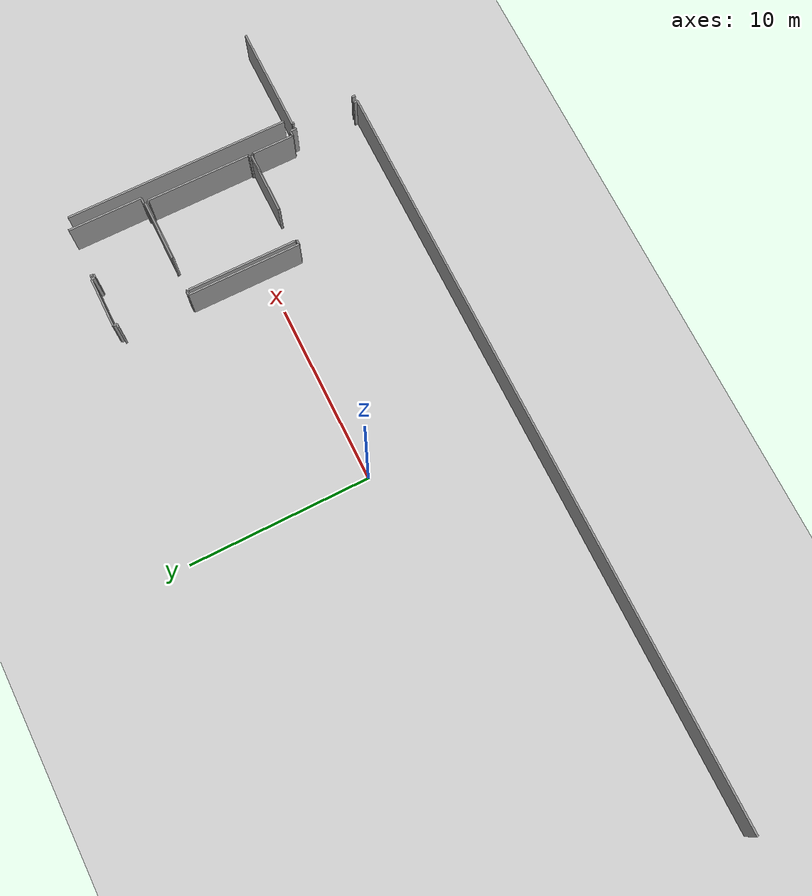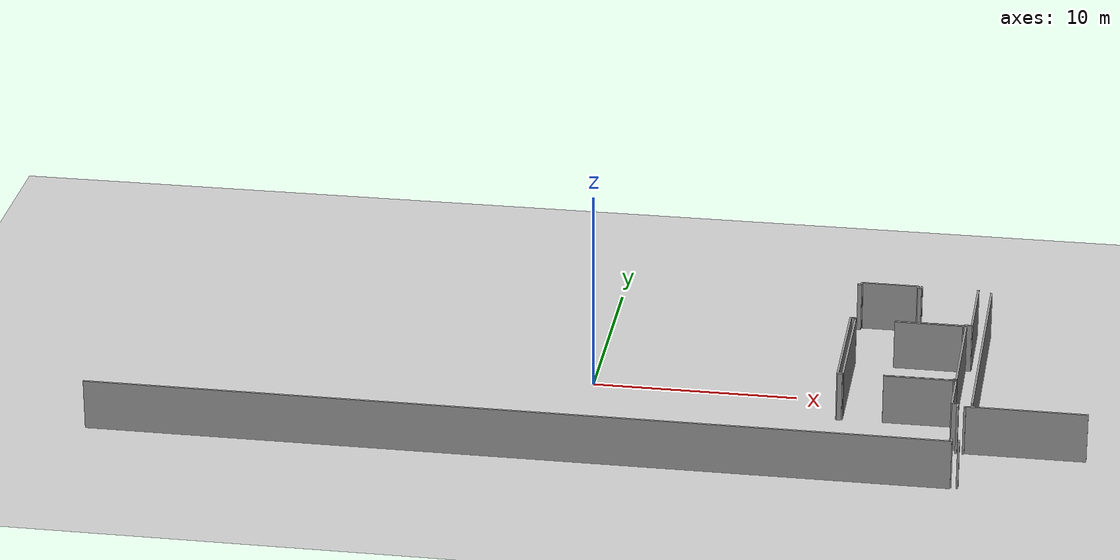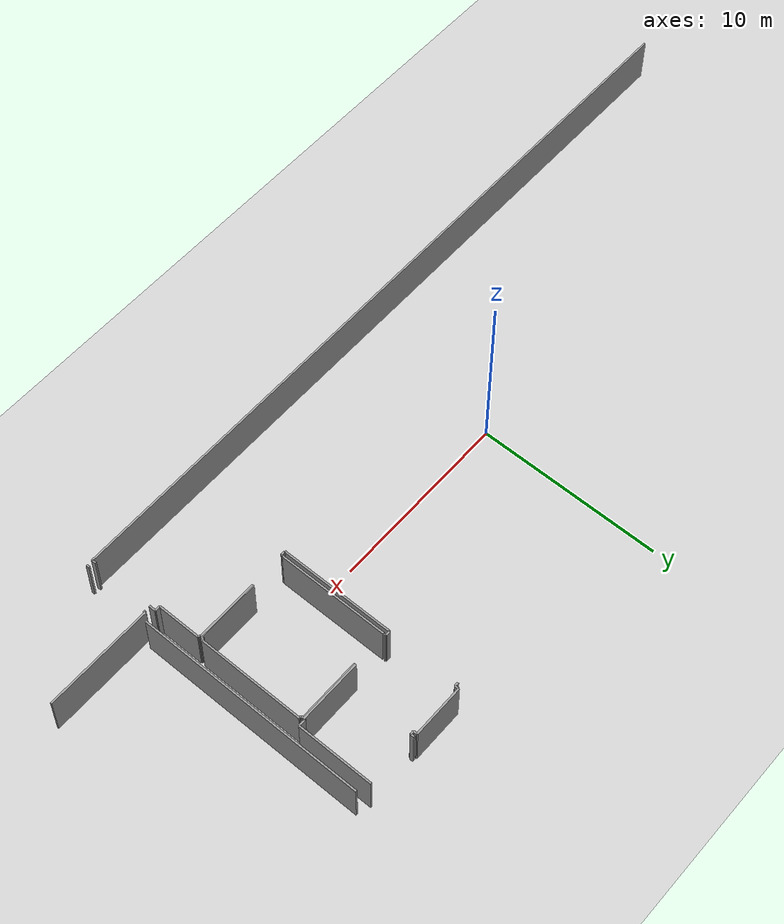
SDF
<sdf version="1.6">
 <world name="default">
  <model name="ground_plane">
   <static>1</static>
   <link name="link">
    <collision name="collision">
     <geometry><plane><normal>0 0 1</normal><size>100 100</size></plane></geometry>
     <surface><friction><ode><mu>100</mu><mu2>50</mu2></ode></friction></surface>
    </collision>
    <visual name="visual">
     <cast_shadows>0</cast_shadows>
     <geometry><plane><normal>0 0 1</normal><size>100 100</size></plane></geometry>
     <material>
      <script><uri>file://media/materials/scripts/gazebo.material</uri><name>Gazebo/Grey</name></script>
     </material>
    </visual>
   </link>
  </model>
  <model name="50041186">
   <static>1</static>
   <link name="Wall_82">
    <collision name="Wall_82_Collision">
     <geometry><box><size>41.6785657623 0.1 2.5</size></box></geometry>
     <pose>20.8392828812 0 1.25 0 0 0</pose>
    </collision>
    <visual name="Wall_82_Visual">
     <pose>20.8392828812 0 1.25 0 0 0</pose>
     <geometry><box><size>41.6785657623 0.1 2.5</size></box></geometry>
     <material>
      <script><uri>file://media/materials/scripts/gazebo.material</uri><name>Gazebo/Grey</name></script>
      <ambient>1 1 1 1</ambient>
     </material>
    </visual>
    <pose>78.0665714739 -16.5882912899 0 0 0 3.14159265359</pose>
   </link>
   <link name="Wall_107">
    <collision name="Wall_107_Collision">
     <geometry><box><size>0.202062509916 0.1 2.5</size></box></geometry>
     <pose>0.101031254958 0 1.25 0 0 0</pose>
    </collision>
    <visual name="Wall_107_Visual">
     <pose>0.101031254958 0 1.25 0 0 0</pose>
     <geometry><box><size>0.202062509916 0.1 2.5</size></box></geometry>
     <material>
      <script><uri>file://media/materials/scripts/gazebo.material</uri><name>Gazebo/Grey</name></script>
      <ambient>1 1 1 1</ambient>
     </material>
    </visual>
    <pose>72.0228462637 -0.211962557512 0 0 0 0.0</pose>
   </link>
   <link name="Wall_108">
    <collision name="Wall_108_Collision">
     <geometry><box><size>0.205616373156 0.1 2.5</size></box></geometry>
     <pose>0.102808186578 0 1.25 0 0 0</pose>
    </collision>
    <visual name="Wall_108_Visual">
     <pose>0.102808186578 0 1.25 0 0 0</pose>
     <geometry><box><size>0.205616373156 0.1 2.5</size></box></geometry>
     <material>
      <script><uri>file://media/materials/scripts/gazebo.material</uri><name>Gazebo/Grey</name></script>
      <ambient>1 1 1 1</ambient>
     </material>
    </visual>
    <pose>72.2249087736 -0.211962557512 0 0 0 1.57079632679</pose>
   </link>
   <link name="Wall_109">
    <collision name="Wall_109_Collision">
     <geometry><box><size>2.80831350151 0.1 2.5</size></box></geometry>
     <pose>1.40415675075 0 1.25 0 0 0</pose>
    </collision>
    <visual name="Wall_109_Visual">
     <pose>1.40415675075 0 1.25 0 0 0</pose>
     <geometry><box><size>2.80831350151 0.1 2.5</size></box></geometry>
     <material>
      <script><uri>file://media/materials/scripts/gazebo.material</uri><name>Gazebo/Grey</name></script>
      <ambient>1 1 1 1</ambient>
     </material>
    </visual>
    <pose>72.2249087736 -0.00634618435666 0 0 0 0.0</pose>
   </link>
   <link name="Wall_110">
    <collision name="Wall_110_Collision">
     <geometry><box><size>0.205362525781 0.1 2.5</size></box></geometry>
     <pose>0.102681262891 0 1.25 0 0 0</pose>
    </collision>
    <visual name="Wall_110_Visual">
     <pose>0.102681262891 0 1.25 0 0 0</pose>
     <geometry><box><size>0.205362525781 0.1 2.5</size></box></geometry>
     <material>
      <script><uri>file://media/materials/scripts/gazebo.material</uri><name>Gazebo/Grey</name></script>
      <ambient>1 1 1 1</ambient>
     </material>
    </visual>
    <pose>75.0332222751 -0.00634618435666 0 0 0 -1.57079632679</pose>
   </link>
   <link name="Wall_111">
    <collision name="Wall_111_Collision">
     <geometry><box><size>0.182516262097 0.1 2.5</size></box></geometry>
     <pose>0.0912581310487 0 1.25 0 0 0</pose>
    </collision>
    <visual name="Wall_111_Visual">
     <pose>0.0912581310487 0 1.25 0 0 0</pose>
     <geometry><box><size>0.182516262097 0.1 2.5</size></box></geometry>
     <material>
      <script><uri>file://media/materials/scripts/gazebo.material</uri><name>Gazebo/Grey</name></script>
      <ambient>1 1 1 1</ambient>
     </material>
    </visual>
    <pose>75.0332222751 -0.211708710138 0 0 0 0.0</pose>
   </link>
   <link name="Wall_112">
    <collision name="Wall_112_Collision">
     <geometry><box><size>0.203331746787 0.1 2.5</size></box></geometry>
     <pose>0.101665873394 0 1.25 0 0 0</pose>
    </collision>
    <visual name="Wall_112_Visual">
     <pose>0.101665873394 0 1.25 0 0 0</pose>
     <geometry><box><size>0.203331746787 0.1 2.5</size></box></geometry>
     <material>
      <script><uri>file://media/materials/scripts/gazebo.material</uri><name>Gazebo/Grey</name></script>
      <ambient>1 1 1 1</ambient>
     </material>
    </visual>
    <pose>75.2157385372 -0.211708710138 0 0 0 1.57079632679</pose>
   </link>
   <link name="Wall_113">
    <collision name="Wall_113_Collision">
     <geometry><box><size>4.07996192289 0.1 2.5</size></box></geometry>
     <pose>2.03998096145 0 1.25 0 0 0</pose>
    </collision>
    <visual name="Wall_113_Visual">
     <pose>2.03998096145 0 1.25 0 0 0</pose>
     <geometry><box><size>4.07996192289 0.1 2.5</size></box></geometry>
     <material>
      <script><uri>file://media/materials/scripts/gazebo.material</uri><name>Gazebo/Grey</name></script>
      <ambient>1 1 1 1</ambient>
     </material>
    </visual>
    <pose>78.0338251626 -0.00837696335078 0 0 0 -1.57079632679</pose>
   </link>
   <link name="Wall_114">
    <collision name="Wall_114_Collision">
     <geometry><box><size>0.366047913692 0.1 2.5</size></box></geometry>
     <pose>0.183023956846 0 1.25 0 0 0</pose>
    </collision>
    <visual name="Wall_114_Visual">
     <pose>0.183023956846 0 1.25 0 0 0</pose>
     <geometry><box><size>0.366047913692 0.1 2.5</size></box></geometry>
     <material>
      <script><uri>file://media/materials/scripts/gazebo.material</uri><name>Gazebo/Grey</name></script>
      <ambient>1 1 1 1</ambient>
     </material>
    </visual>
    <pose>78.0338251626 -4.08833888624 0 0 0 3.14159265359</pose>
   </link>
   <link name="Wall_115">
    <collision name="Wall_115_Collision">
     <geometry><box><size>0.0756465175313 0.1 2.5</size></box></geometry>
     <pose>0.0378232587657 0 1.25 0 0 0</pose>
    </collision>
    <visual name="Wall_115_Visual">
     <pose>0.0378232587657 0 1.25 0 0 0</pose>
     <geometry><box><size>0.0756465175313 0.1 2.5</size></box></geometry>
     <material>
      <script><uri>file://media/materials/scripts/gazebo.material</uri><name>Gazebo/Grey</name></script>
      <ambient>1 1 1 1</ambient>
     </material>
    </visual>
    <pose>77.6677772489 -4.08833888624 0 0 0 -1.57079632679</pose>
   </link>
   <link name="Wall_116">
    <collision name="Wall_116_Collision">
     <geometry><box><size>3.42021259718 0.1 2.5</size></box></geometry>
     <pose>1.71010629859 0 1.25 0 0 0</pose>
    </collision>
    <visual name="Wall_116_Visual">
     <pose>1.71010629859 0 1.25 0 0 0</pose>
     <geometry><box><size>3.42021259718 0.1 2.5</size></box></geometry>
     <material>
      <script><uri>file://media/materials/scripts/gazebo.material</uri><name>Gazebo/Grey</name></script>
      <ambient>1 1 1 1</ambient>
     </material>
    </visual>
    <pose>77.6677772489 -4.16398540378 0 0 0 3.14159265359</pose>
   </link>
   <link name="Wall_117">
    <collision name="Wall_117_Collision">
     <geometry><box><size>0.0756465175313 0.1 2.5</size></box></geometry>
     <pose>0.0378232587657 0 1.25 0 0 0</pose>
    </collision>
    <visual name="Wall_117_Visual">
     <pose>0.0378232587657 0 1.25 0 0 0</pose>
     <geometry><box><size>0.0756465175313 0.1 2.5</size></box></geometry>
     <material>
      <script><uri>file://media/materials/scripts/gazebo.material</uri><name>Gazebo/Grey</name></script>
      <ambient>1 1 1 1</ambient>
     </material>
    </visual>
    <pose>72.3042360781 -4.16398540378 0 0 0 1.57079632679</pose>
   </link>
   <link name="Wall_118">
    <collision name="Wall_118_Collision">
     <geometry><box><size>0.246866571474 0.1 2.5</size></box></geometry>
     <pose>0.123433285737 0 1.25 0 0 0</pose>
    </collision>
    <visual name="Wall_118_Visual">
     <pose>0.123433285737 0 1.25 0 0 0</pose>
     <geometry><box><size>0.246866571474 0.1 2.5</size></box></geometry>
     <material>
      <script><uri>file://media/materials/scripts/gazebo.material</uri><name>Gazebo/Grey</name></script>
      <ambient>1 1 1 1</ambient>
     </material>
    </visual>
    <pose>72.3042360781 -4.08833888624 0 0 0 3.14159265359</pose>
   </link>
   <link name="Wall_119">
    <collision name="Wall_119_Collision">
     <geometry><box><size>6.22598762494 0.1 2.5</size></box></geometry>
     <pose>3.11299381247 0 1.25 0 0 0</pose>
    </collision>
    <visual name="Wall_119_Visual">
     <pose>3.11299381247 0 1.25 0 0 0</pose>
     <geometry><box><size>6.22598762494 0.1 2.5</size></box></geometry>
     <material>
      <script><uri>file://media/materials/scripts/gazebo.material</uri><name>Gazebo/Grey</name></script>
      <ambient>1 1 1 1</ambient>
     </material>
    </visual>
    <pose>72.0573695066 -4.08833888624 0 0 0 -1.57079632679</pose>
   </link>
   <link name="Wall_120">
    <collision name="Wall_120_Collision">
     <geometry><box><size>0.228843407901 0.1 2.5</size></box></geometry>
     <pose>0.11442170395 0 1.25 0 0 0</pose>
    </collision>
    <visual name="Wall_120_Visual">
     <pose>0.11442170395 0 1.25 0 0 0</pose>
     <geometry><box><size>0.228843407901 0.1 2.5</size></box></geometry>
     <material>
      <script><uri>file://media/materials/scripts/gazebo.material</uri><name>Gazebo/Grey</name></script>
      <ambient>1 1 1 1</ambient>
     </material>
    </visual>
    <pose>72.0573695066 -10.3143265112 0 0 0 0.0</pose>
   </link>
   <link name="Wall_121">
    <collision name="Wall_121_Collision">
     <geometry><box><size>0.0694272568618 0.1 2.5</size></box></geometry>
     <pose>0.0347136284309 0 1.25 0 0 0</pose>
    </collision>
    <visual name="Wall_121_Visual">
     <pose>0.0347136284309 0 1.25 0 0 0</pose>
     <geometry><box><size>0.0694272568618 0.1 2.5</size></box></geometry>
     <material>
      <script><uri>file://media/materials/scripts/gazebo.material</uri><name>Gazebo/Grey</name></script>
      <ambient>1 1 1 1</ambient>
     </material>
    </visual>
    <pose>72.2862129145 -10.3143265112 0 0 0 1.57079632679</pose>
   </link>
   <link name="Wall_122">
    <collision name="Wall_122_Collision">
     <geometry><box><size>3.38898937014 0.1 2.5</size></box></geometry>
     <pose>1.69449468507 0 1.25 0 0 0</pose>
    </collision>
    <visual name="Wall_122_Visual">
     <pose>1.69449468507 0 1.25 0 0 0</pose>
     <geometry><box><size>3.38898937014 0.1 2.5</size></box></geometry>
     <material>
      <script><uri>file://media/materials/scripts/gazebo.material</uri><name>Gazebo/Grey</name></script>
      <ambient>1 1 1 1</ambient>
     </material>
    </visual>
    <pose>74.2664762811 -10.2448992543 0 0 0 0.0</pose>
   </link>
   <link name="Wall_123">
    <collision name="Wall_123_Collision">
     <geometry><box><size>0.0616849119467 0.1 2.5</size></box></geometry>
     <pose>0.0308424559733 0 1.25 0 0 0</pose>
    </collision>
    <visual name="Wall_123_Visual">
     <pose>0.0308424559733 0 1.25 0 0 0</pose>
     <geometry><box><size>0.0616849119467 0.1 2.5</size></box></geometry>
     <material>
      <script><uri>file://media/materials/scripts/gazebo.material</uri><name>Gazebo/Grey</name></script>
      <ambient>1 1 1 1</ambient>
     </material>
    </visual>
    <pose>77.6554656513 -10.2448992543 0 0 0 -1.57079632679</pose>
   </link>
   <link name="Wall_124">
    <collision name="Wall_124_Collision">
     <geometry><box><size>0.0996350943995 0.1 2.5</size></box></geometry>
     <pose>0.0498175471997 0 1.25 0 0 0</pose>
    </collision>
    <visual name="Wall_124_Visual">
     <pose>0.0498175471997 0 1.25 0 0 0</pose>
     <geometry><box><size>0.0996350943995 0.1 2.5</size></box></geometry>
     <material>
      <script><uri>file://media/materials/scripts/gazebo.material</uri><name>Gazebo/Grey</name></script>
      <ambient>1 1 1 1</ambient>
     </material>
    </visual>
    <pose>77.6554656513 -10.3065841663 0 0 0 0.0</pose>
   </link>
   <link name="Wall_125">
    <collision name="Wall_125_Collision">
     <geometry><box><size>2.35278438839 0.1 2.5</size></box></geometry>
     <pose>1.17639219419 0 1.25 0 0 0</pose>
    </collision>
    <visual name="Wall_125_Visual">
     <pose>1.17639219419 0 1.25 0 0 0</pose>
     <geometry><box><size>2.35278438839 0.1 2.5</size></box></geometry>
     <material>
      <script><uri>file://media/materials/scripts/gazebo.material</uri><name>Gazebo/Grey</name></script>
      <ambient>1 1 1 1</ambient>
     </material>
    </visual>
    <pose>77.7551007457 -10.3065841663 0 0 0 -1.57079632679</pose>
   </link>
   <link name="Wall_126">
    <collision name="Wall_126_Collision">
     <geometry><box><size>0.288878311915 0.1 2.5</size></box></geometry>
     <pose>0.144439155957 0 1.25 0 0 0</pose>
    </collision>
    <visual name="Wall_126_Visual">
     <pose>0.144439155957 0 1.25 0 0 0</pose>
     <geometry><box><size>0.288878311915 0.1 2.5</size></box></geometry>
     <material>
      <script><uri>file://media/materials/scripts/gazebo.material</uri><name>Gazebo/Grey</name></script>
      <ambient>1 1 1 1</ambient>
     </material>
    </visual>
    <pose>77.7551007457 -12.6593685547 0 0 0 0.0</pose>
   </link>
   <link name="Wall_127">
    <collision name="Wall_127_Collision">
     <geometry><box><size>0.351197842297 0.1 2.5</size></box></geometry>
     <pose>0.175598921149 0 1.25 0 0 0</pose>
    </collision>
    <visual name="Wall_127_Visual">
     <pose>0.175598921149 0 1.25 0 0 0</pose>
     <geometry><box><size>0.351197842297 0.1 2.5</size></box></geometry>
     <material>
      <script><uri>file://media/materials/scripts/gazebo.material</uri><name>Gazebo/Grey</name></script>
      <ambient>1 1 1 1</ambient>
     </material>
    </visual>
    <pose>78.0439790576 -12.6593685547 0 0 0 -1.57079632679</pose>
   </link>
   <link name="Wall_128">
    <collision name="Wall_128_Collision">
     <geometry><box><size>0.214930189804 0.1 2.5</size></box></geometry>
     <pose>0.107465094902 0 1.25 0 0 0</pose>
    </collision>
    <visual name="Wall_128_Visual">
     <pose>0.107465094902 0 1.25 0 0 0</pose>
     <geometry><box><size>0.214930189804 0.1 2.5</size></box></geometry>
     <material>
      <script><uri>file://media/materials/scripts/gazebo.material</uri><name>Gazebo/Grey</name></script>
      <ambient>1 1 1 1</ambient>
     </material>
    </visual>
    <pose>78.0439790576 -16.3745518007 0 0 0 -1.46548664823</pose>
   </link>
   <link name="Wall_129">
    <collision name="Wall_129_Collision">
     <geometry><box><size>3.39660479137 0.1 2.5</size></box></geometry>
     <pose>1.69830239568 0 1.25 0 0 0</pose>
    </collision>
    <visual name="Wall_129_Visual">
     <pose>1.69830239568 0 1.25 0 0 0</pose>
     <geometry><box><size>3.39660479137 0.1 2.5</size></box></geometry>
     <material>
      <script><uri>file://media/materials/scripts/gazebo.material</uri><name>Gazebo/Grey</name></script>
      <ambient>1 1 1 1</ambient>
     </material>
    </visual>
    <pose>77.657623354 -10.2122798667 0 0 0 3.14159265359</pose>
   </link>
   <link name="Wall_130">
    <collision name="Wall_130_Collision">
     <geometry><box><size>5.99143265112 0.1 2.5</size></box></geometry>
     <pose>2.99571632556 0 1.25 0 0 0</pose>
    </collision>
    <visual name="Wall_130_Visual">
     <pose>2.99571632556 0 1.25 0 0 0</pose>
     <geometry><box><size>5.99143265112 0.1 2.5</size></box></geometry>
     <material>
      <script><uri>file://media/materials/scripts/gazebo.material</uri><name>Gazebo/Grey</name></script>
      <ambient>1 1 1 1</ambient>
     </material>
    </visual>
    <pose>72.3061399334 -10.2122798667 0 0 0 1.57079632679</pose>
   </link>
   <link name="Wall_131">
    <collision name="Wall_131_Collision">
     <geometry><box><size>3.39051245439 0.1 2.5</size></box></geometry>
     <pose>1.69525622719 0 1.25 0 0 0</pose>
    </collision>
    <visual name="Wall_131_Visual">
     <pose>1.69525622719 0 1.25 0 0 0</pose>
     <geometry><box><size>3.39051245439 0.1 2.5</size></box></geometry>
     <material>
      <script><uri>file://media/materials/scripts/gazebo.material</uri><name>Gazebo/Grey</name></script>
      <ambient>1 1 1 1</ambient>
     </material>
    </visual>
    <pose>74.2456607964 -4.22084721561 0 0 0 0.0</pose>
   </link>
   <link name="Wall_132">
    <collision name="Wall_132_Collision">
     <geometry><box><size>0.113596699984 0.1 2.5</size></box></geometry>
     <pose>0.0567983499921 0 1.25 0 0 0</pose>
    </collision>
    <visual name="Wall_132_Visual">
     <pose>0.0567983499921 0 1.25 0 0 0</pose>
     <geometry><box><size>0.113596699984 0.1 2.5</size></box></geometry>
     <material>
      <script><uri>file://media/materials/scripts/gazebo.material</uri><name>Gazebo/Grey</name></script>
      <ambient>1 1 1 1</ambient>
     </material>
    </visual>
    <pose>77.6361732508 -4.22084721561 0 0 0 -1.57079632679</pose>
   </link>
   <link name="Wall_133">
    <collision name="Wall_133_Collision">
     <geometry><box><size>0.119942884341 0.1 2.5</size></box></geometry>
     <pose>0.0599714421704 0 1.25 0 0 0</pose>
    </collision>
    <visual name="Wall_133_Visual">
     <pose>0.0599714421704 0 1.25 0 0 0</pose>
     <geometry><box><size>0.119942884341 0.1 2.5</size></box></geometry>
     <material>
      <script><uri>file://media/materials/scripts/gazebo.material</uri><name>Gazebo/Grey</name></script>
      <ambient>1 1 1 1</ambient>
     </material>
    </visual>
    <pose>77.6361732508 -4.3344439156 0 0 0 0.0</pose>
   </link>
   <link name="Wall_134">
    <collision name="Wall_134_Collision">
     <geometry><box><size>5.75141995875 0.1 2.5</size></box></geometry>
     <pose>2.87570997937 0 1.25 0 0 0</pose>
    </collision>
    <visual name="Wall_134_Visual">
     <pose>2.87570997937 0 1.25 0 0 0</pose>
     <geometry><box><size>5.75141995875 0.1 2.5</size></box></geometry>
     <material>
      <script><uri>file://media/materials/scripts/gazebo.material</uri><name>Gazebo/Grey</name></script>
      <ambient>1 1 1 1</ambient>
     </material>
    </visual>
    <pose>77.7561161352 -4.3344439156 0 0 0 -1.57079632679</pose>
   </link>
   <link name="Wall_135">
    <collision name="Wall_135_Collision">
     <geometry><box><size>0.096335078534 0.1 2.5</size></box></geometry>
     <pose>0.048167539267 0 1.25 0 0 0</pose>
    </collision>
    <visual name="Wall_135_Visual">
     <pose>0.048167539267 0 1.25 0 0 0</pose>
     <geometry><box><size>0.096335078534 0.1 2.5</size></box></geometry>
     <material>
      <script><uri>file://media/materials/scripts/gazebo.material</uri><name>Gazebo/Grey</name></script>
      <ambient>1 1 1 1</ambient>
     </material>
    </visual>
    <pose>77.7561161352 -10.0858638743 0 0 0 3.14159265359</pose>
   </link>
   <link name="Wall_136">
    <collision name="Wall_136_Collision">
     <geometry><box><size>0.126434405173 0.1 2.5</size></box></geometry>
     <pose>0.0632172025865 0 1.25 0 0 0</pose>
    </collision>
    <visual name="Wall_136_Visual">
     <pose>0.0632172025865 0 1.25 0 0 0</pose>
     <geometry><box><size>0.126434405173 0.1 2.5</size></box></geometry>
     <material>
      <script><uri>file://media/materials/scripts/gazebo.material</uri><name>Gazebo/Grey</name></script>
      <ambient>1 1 1 1</ambient>
     </material>
    </visual>
    <pose>77.6597810566 -10.0858638743 0 0 0 -1.5878629427</pose>
   </link>
   <link name="Wall_140">
    <collision name="Wall_140_Collision">
     <geometry><box><size>0.186197049024 0.1 2.5</size></box></geometry>
     <pose>0.0930985245121 0 1.25 0 0 0</pose>
    </collision>
    <visual name="Wall_140_Visual">
     <pose>0.0930985245121 0 1.25 0 0 0</pose>
     <geometry><box><size>0.186197049024 0.1 2.5</size></box></geometry>
     <material>
      <script><uri>file://media/materials/scripts/gazebo.material</uri><name>Gazebo/Grey</name></script>
      <ambient>1 1 1 1</ambient>
     </material>
    </visual>
    <pose>78.3895922577 -16.6153260352 0 0 0 1.57079632679</pose>
   </link>
   <link name="Wall_141">
    <collision name="Wall_141_Collision">
     <geometry><box><size>0.10890052356 0.1 2.5</size></box></geometry>
     <pose>0.0544502617801 0 1.25 0 0 0</pose>
    </collision>
    <visual name="Wall_141_Visual">
     <pose>0.0544502617801 0 1.25 0 0 0</pose>
     <geometry><box><size>0.10890052356 0.1 2.5</size></box></geometry>
     <material>
      <script><uri>file://media/materials/scripts/gazebo.material</uri><name>Gazebo/Grey</name></script>
      <ambient>1 1 1 1</ambient>
     </material>
    </visual>
    <pose>78.3895922577 -13.0341742028 0 0 0 1.57079632679</pose>
   </link>
   <link name="Wall_142">
    <collision name="Wall_142_Collision">
     <geometry><box><size>5.84394732667 0.1 2.5</size></box></geometry>
     <pose>2.92197366333 0 1.25 0 0 0</pose>
    </collision>
    <visual name="Wall_142_Visual">
     <pose>2.92197366333 0 1.25 0 0 0</pose>
     <geometry><box><size>5.84394732667 0.1 2.5</size></box></geometry>
     <material>
      <script><uri>file://media/materials/scripts/gazebo.material</uri><name>Gazebo/Grey</name></script>
      <ambient>1 1 1 1</ambient>
     </material>
    </visual>
    <pose>78.3895922577 -12.9252736792 0 0 0 0.0</pose>
   </link>
   <link name="Wall_148">
    <collision name="Wall_148_Collision">
     <geometry><box><size>12.3297477392 0.1 2.5</size></box></geometry>
     <pose>6.16487386959 0 1.25 0 0 0</pose>
    </collision>
    <visual name="Wall_148_Visual">
     <pose>6.16487386959 0 1.25 0 0 0</pose>
     <geometry><box><size>12.3297477392 0.1 2.5</size></box></geometry>
     <material>
      <script><uri>file://media/materials/scripts/gazebo.material</uri><name>Gazebo/Grey</name></script>
      <ambient>1 1 1 1</ambient>
     </material>
    </visual>
    <pose>78.7055053149 -12.5860066635 0 0 0 1.57079632679</pose>
   </link>
   <pose>-59.9 8.31532603522 0 0 0 0</pose>
  </model>
 </world>
</sdf>
